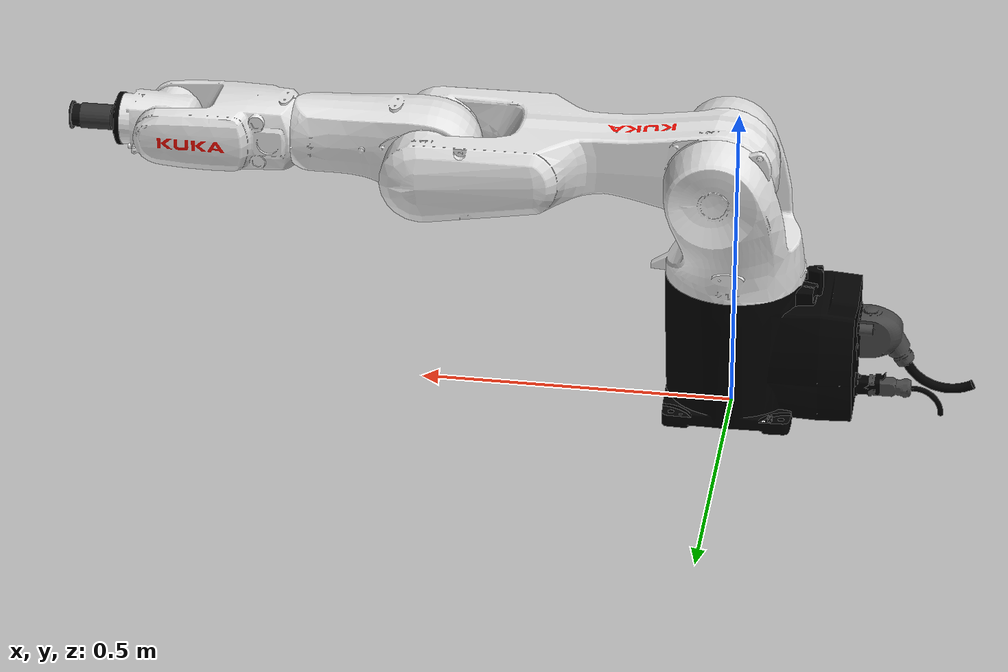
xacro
<?xml version="1.0" encoding="UTF-8"?>
<robot xmlns:xacro="http://ros.org/wiki/xacro" name="kr6_r900_2">

  <!-- world link -->
  <link name="world"/>
  <link name="base"/>
  <link name="base_link">
    <collision>
      <geometry><mesh filename="file:///home/genji/Robotics_industrial_RL/install/kr6_r900_cell/share/kr6_r900_cell/meshes/kr6_r900_2/collision/base_link.stl"/></geometry>
      <origin rpy="0 0 0" xyz="0 0 0"/>
    </collision>
    <inertial>
      <mass value="16.916"/>
      <origin rpy="0 0 0" xyz="-0.037 0 0.109"/>
      <inertia ixx="0.162" ixy="0" ixz="0" iyy="0.109" iyz="0" izz="0.185"/>
    </inertial>
    <visual>
      <geometry><mesh filename="file:///home/genji/Robotics_industrial_RL/install/kr6_r900_cell/share/kr6_r900_cell/meshes/kr6_r900_2/visual/base_link.dae"/></geometry>
      <origin rpy="0 0 0" xyz="0 0 0"/>
    </visual>
  </link>

  <link name="link_1">
    <collision>
      <geometry><mesh filename="file:///home/genji/Robotics_industrial_RL/install/kr6_r900_cell/share/kr6_r900_cell/meshes/kr6_r900_2/collision/link_1.stl"/></geometry>
      <origin rpy="-3.14159 0 0" xyz="0 0 0.208"/>
    </collision>
    <inertial>
      <mass value="8.416"/>
      <origin rpy="0 0 0" xyz="0.006 -0.016 -0.107"/>
      <inertia ixx="0.074" ixy="0" ixz="0" iyy="0.089" iyz="0" izz="0.110"/>
    </inertial>
    <visual>
      <geometry><mesh filename="file:///home/genji/Robotics_industrial_RL/install/kr6_r900_cell/share/kr6_r900_cell/meshes/kr6_r900_2/visual/link_1.dae"/></geometry>
      <origin rpy="-3.14159 0 0" xyz="0 0 0.208"/>
    </visual>
  </link>

  <link name="link_2">
    <collision>
      <geometry><mesh filename="file:///home/genji/Robotics_industrial_RL/install/kr6_r900_cell/share/kr6_r900_cell/meshes/kr6_r900_2/collision/link_2.stl"/></geometry>
      <origin rpy="1.5708 0 1.5708" xyz="-0.4 -0.025 -0.091"/>
    </collision>
    <inertial>
      <mass value="16.793"/>
      <origin rpy="0 0 0" xyz="0.147 -0.004 -0.074"/>
      <inertia ixx="0.548" ixy="0" ixz="0" iyy="0.087" iyz="0" izz="0.589"/>
    </inertial>
    <visual>
      <geometry><mesh filename="file:///home/genji/Robotics_industrial_RL/install/kr6_r900_cell/share/kr6_r900_cell/meshes/kr6_r900_2/visual/link_2.dae"/></geometry>
      <origin rpy="1.5708 0 1.5708" xyz="-0.4 -0.025 -0.091"/>
    </visual>
  </link>

  <link name="link_3">
    <collision>
      <geometry><mesh filename="file:///home/genji/Robotics_industrial_RL/install/kr6_r900_cell/share/kr6_r900_cell/meshes/kr6_r900_2/collision/link_3.stl"/></geometry>
      <origin rpy="1.5708 0 0" xyz="-0.025 0.855 -0.086"/>
    </collision>
    <inertial>
      <mass value="5.988"/>
      <origin rpy="0 0 0" xyz="0.042 -0.012 -0.068"/>
      <inertia ixx="0.043" ixy="0" ixz="0" iyy="0.019" iyz="0" izz="0.048"/>
    </inertial>
    <visual>
      <geometry><mesh filename="file:///home/genji/Robotics_industrial_RL/install/kr6_r900_cell/share/kr6_r900_cell/meshes/kr6_r900_2/visual/link_3.dae"/></geometry>
      <origin rpy="1.5708 0 0" xyz="-0.025 0.855 -0.086"/>
    </visual>
  </link>

  <link name="link_4">
    <collision>
      <geometry><mesh filename="file:///home/genji/Robotics_industrial_RL/install/kr6_r900_cell/share/kr6_r900_cell/meshes/kr6_r900_2/collision/link_4.stl"/></geometry>
      <origin rpy="0 1.5708 0" xyz="-0.880 0 0.221"/>
    </collision>
    <inertial>
      <mass value="4.700"/>
      <origin rpy="0 0 0" xyz="0.001 0.009 -0.082"/>
      <inertia ixx="0.010" ixy="0" ixz="0" iyy="0.044" iyz="0" izz="0.047"/>
    </inertial>
    <visual>
      <geometry><mesh filename="file:///home/genji/Robotics_industrial_RL/install/kr6_r900_cell/share/kr6_r900_cell/meshes/kr6_r900_2/visual/link_4.dae"/></geometry>
      <origin rpy="0 1.5708 0" xyz="-0.880 0 0.221"/>
    </visual>
  </link>

  <link name="link_5">
    <collision>
      <geometry><mesh filename="file:///home/genji/Robotics_industrial_RL/install/kr6_r900_cell/share/kr6_r900_cell/meshes/kr6_r900_2/collision/link_5.stl"/></geometry>
      <origin rpy="1.5708 0 0" xyz="-0.445 0.880 -0.050"/>
    </collision>
    <inertial>
      <mass value="1.613"/>
      <origin rpy="0 0 0" xyz="0.009 0.001 -0.026"/>
      <inertia ixx="0.002" ixy="0" ixz="0" iyy="0.002" iyz="0" izz="0.002"/>
    </inertial>
    <visual>
      <geometry><mesh filename="file:///home/genji/Robotics_industrial_RL/install/kr6_r900_cell/share/kr6_r900_cell/meshes/kr6_r900_2/visual/link_5.dae"/></geometry>
      <origin rpy="1.5708 0 0" xyz="-0.445 0.880 -0.050"/>
    </visual>
  </link>

  <link name="link_6">
    <collision>
      <geometry><mesh filename="file:///home/genji/Robotics_industrial_RL/install/kr6_r900_cell/share/kr6_r900_cell/meshes/kr6_r900_2/collision/link_6.stl"/></geometry>
      <origin rpy="0 1.5708 0" xyz="-0.880 0 0.507"/>
    </collision>
    <inertial>
      <mass value="0.734"/>
      <origin rpy="0 0 0" xyz="0 0 -0.012"/>
      <inertia ixx="0.000184" ixy="0" ixz="0" iyy="0.000182" iyz="0" izz="0.000296"/>
    </inertial>
    <visual>
      <geometry><mesh filename="file:///home/genji/Robotics_industrial_RL/install/kr6_r900_cell/share/kr6_r900_cell/meshes/kr6_r900_2/visual/link_6.dae"/></geometry>
      <origin rpy="0 1.5708 0" xyz="-0.880 0 0.507"/>
    </visual>
  </link>

  <link name="flange"/>
  <link name="tool0"/>

  <!-- JOINTS -->
  <joint name="world-base_link" type="fixed">
    <parent link="world"/>
    <child link="base_link"/>
    <origin rpy="0 0 0" xyz="0 0 0"/>
  </joint>

  <joint name="base_link-base" type="fixed">
    <parent link="base_link"/>
    <child link="base"/>
  </joint>

  <joint name="joint_1" type="revolute">
    <axis xyz="0 0 1"/>
    <parent link="base_link"/>
    <child link="link_1"/>
    <origin rpy="3.14159 0 0" xyz="0 0 0.208"/>
    <limit effort="334.8" lower="-2.96706" upper="2.96706" velocity="6.28319"/>
  </joint>

  <joint name="joint_2" type="revolute">
    <axis xyz="0 0 1"/>
    <parent link="link_1"/>
    <child link="link_2"/>
    <origin rpy="1.5708 0 0" xyz="0.025 -0.0907 -0.192"/>
    <limit effort="260.657" lower="-3.31613" upper="0.78540" velocity="5.23599"/>
  </joint>

  <joint name="joint_3" type="revolute">
    <axis xyz="0 0 1"/>
    <parent link="link_2"/>
    <child link="link_3"/>
    <origin rpy="0 0 0" xyz="0.455 0 -0.0042"/>
    <limit effort="137.827" lower="-2.09440" upper="2.72271" velocity="6.28319"/>
  </joint>

  <joint name="joint_4" type="revolute">
    <axis xyz="0 0 1"/>
    <parent link="link_3"/>
    <child link="link_4"/>
    <origin rpy="1.5708 0 -1.5708" xyz="0.196 -0.025 -0.0865"/>
    <limit effort="43.282" lower="-3.22886" upper="3.22886" velocity="7.85398"/>
  </joint>

  <joint name="joint_5" type="revolute">
    <axis xyz="0 0 1"/>
    <parent link="link_4"/>
    <child link="link_5"/>
    <origin rpy="0 1.5708 1.5708" xyz="0 0.0505 -0.224"/>
    <limit effort="45.670" lower="-2.09440" upper="2.09440" velocity="7.85398"/>
  </joint>

  <joint name="joint_6" type="revolute">
    <axis xyz="0 0 1"/>
    <parent link="link_5"/>
    <child link="link_6"/>
    <origin rpy="1.5708 0 -1.5708" xyz="0.0615 0 -0.0505"/>
    <limit effort="23.294" lower="-6.10865" upper="6.10865" velocity="9.42478"/>
  </joint>

  <joint name="link6-flange" type="fixed">
    <parent link="link_6"/>
    <child link="flange"/>
    <origin rpy="0 1.5708 0" xyz="0 0 -0.0285"/>
  </joint>

  <joint name="link6-tool0" type="fixed">
    <parent link="link_6"/>
    <child link="tool0"/>
    <origin rpy="3.14159 0 3.14159" xyz="0 0 -0.0285"/>
  </joint>

  <!-- ros2_control for Gazebo simulation -->
  <ros2_control name="kr6_r900_gazebo" type="system">
    <hardware>
      <plugin>gz_ros2_control/GazeboSimSystem</plugin>
    </hardware>
    <joint name="joint_1">
      <command_interface name="position"/>
      <state_interface name="position"><param name="initial_value">0.0</param></state_interface>
      <state_interface name="velocity"/>
    </joint>
    <joint name="joint_2">
      <command_interface name="position"/>
      <state_interface name="position"><param name="initial_value">-1.5708</param></state_interface>
      <state_interface name="velocity"/>
    </joint>
    <joint name="joint_3">
      <command_interface name="position"/>
      <state_interface name="position"><param name="initial_value">0.0</param></state_interface>
      <state_interface name="velocity"/>
    </joint>
    <joint name="joint_4">
      <command_interface name="position"/>
      <state_interface name="position"><param name="initial_value">0.0</param></state_interface>
      <state_interface name="velocity"/>
    </joint>
    <joint name="joint_5">
      <command_interface name="position"/>
      <state_interface name="position"><param name="initial_value">0.0</param></state_interface>
      <state_interface name="velocity"/>
    </joint>
    <joint name="joint_6">
      <command_interface name="position"/>
      <state_interface name="position"><param name="initial_value">0.0</param></state_interface>
      <state_interface name="velocity"/>
    </joint>
  </ros2_control>

  <!-- Gazebo ros2_control plugin -->
  <gazebo>
    <plugin filename="gz_ros2_control-system"
            name="gz_ros2_control::GazeboSimROS2ControlPlugin">
      <robot_param>robot_description</robot_param>
      <robot_param_node>robot_state_publisher</robot_param_node>
      <parameters>/home/genji/Robotics_industrial_RL/install/kr6_r900_cell/share/kr6_r900_cell/config/gazebo_controllers.yaml</parameters>
    </plugin>
  </gazebo>

  <!-- vacuum gripper plugin for Ignition -->
  <gazebo reference="suction_tip">
    <mu1>100.0</mu1>
    <mu2>100.0</mu2>
  </gazebo>

  <!-- suction cup gripper -->
  <xacro:include filename="$(find kr6_r900_cell)/urdf/suction_cup.urdf.xacro"/>
  <xacro:suction_cup parent="tool0"/>

</robot>

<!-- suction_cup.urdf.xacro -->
<robot xmlns:xacro="http://ros.org/wiki/xacro">
<xacro:macro name="suction_cup" params="parent">

  <!-- suction cup mount -->
  <link name="suction_mount">
    <visual>
      <geometry><cylinder radius="0.02" length="0.05"/></geometry>
      <origin rpy="0 0 0" xyz="0 0 0.025"/>
      <material name="dark_grey">
        <color rgba="0.2 0.2 0.2 1"/>
      </material>
    </visual>
    <collision>
      <geometry><cylinder radius="0.02" length="0.05"/></geometry>
      <origin rpy="0 0 0" xyz="0 0 0.025"/>
    </collision>
    <inertial>
      <mass value="0.05"/>
      <inertia ixx="0.0001" ixy="0" ixz="0" iyy="0.0001" iyz="0" izz="0.0001"/>
    </inertial>
  </link>

  <!-- suction cup bellows -->
  <link name="suction_bellows">
    <visual>
      <geometry><cylinder radius="0.018" length="0.015"/></geometry>
      <origin rpy="0 0 0" xyz="0 0 0.0075"/>
      <material name="rubber_black">
        <color rgba="0.05 0.05 0.05 1"/>
      </material>
    </visual>
    <inertial>
      <mass value="0.01"/>
      <inertia ixx="0.00001" ixy="0" ixz="0" iyy="0.00001" iyz="0" izz="0.00001"/>
    </inertial>
  </link>

  <!-- suction tip — contact point -->
  <link name="suction_tip">
    <visual>
      <geometry><cylinder radius="0.022" length="0.003"/></geometry>
      <origin rpy="0 0 0" xyz="0 0 0"/>
      <material name="rubber_dark">
        <color rgba="0.1 0.1 0.1 1"/>
      </material>
    </visual>
    <collision>
      <geometry><cylinder radius="0.022" length="0.003"/></geometry>
      <origin rpy="0 0 0" xyz="0 0 0"/>
    </collision>
    <inertial>
      <mass value="0.005"/>
      <inertia ixx="0.000001" ixy="0" ixz="0" iyy="0.000001" iyz="0" izz="0.000001"/>
    </inertial>
  </link>

  <!-- joints -->
  <joint name="tool0_to_suction_mount" type="fixed">
    <parent link="${parent}"/>
    <child link="suction_mount"/>
    <origin rpy="0 0 0" xyz="0 0 0"/>
  </joint>

  <joint name="suction_mount_to_bellows" type="fixed">
    <parent link="suction_mount"/>
    <child link="suction_bellows"/>
    <origin rpy="0 0 0" xyz="0 0 0.05"/>
  </joint>

  <joint name="suction_bellows_to_tip" type="fixed">
    <parent link="suction_bellows"/>
    <child link="suction_tip"/>
    <origin rpy="0 0 0" xyz="0 0 0.015"/>
  </joint>

</xacro:macro>
</robot>
